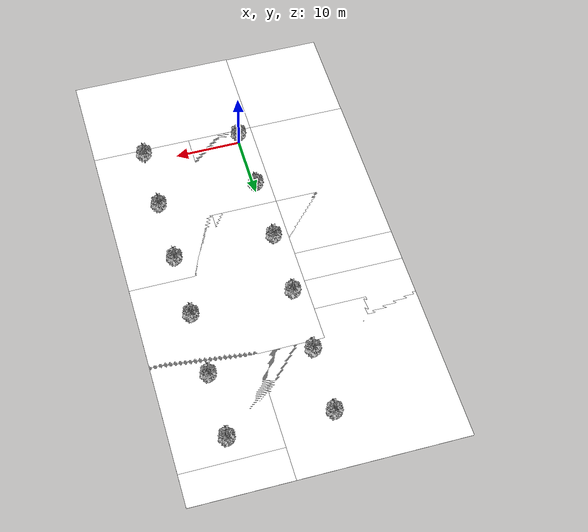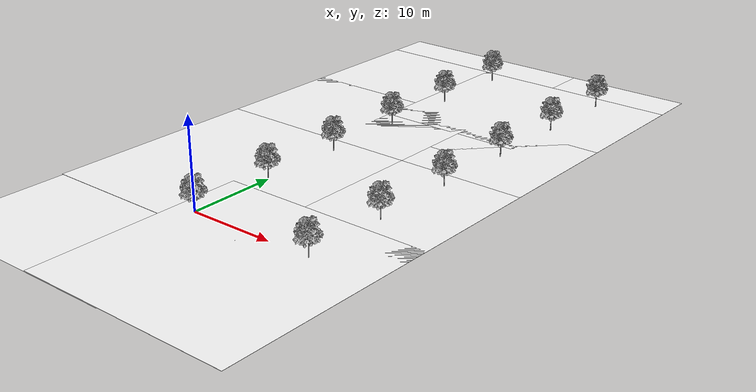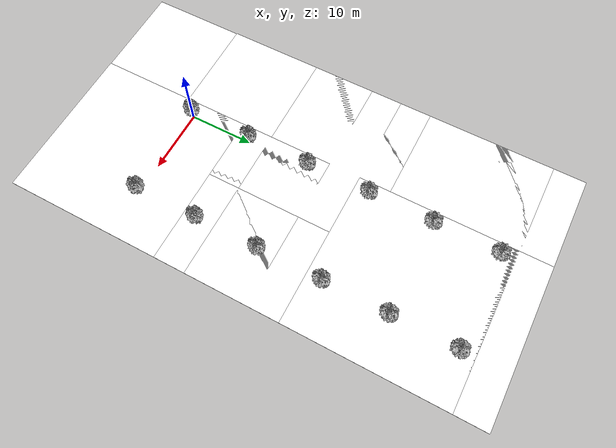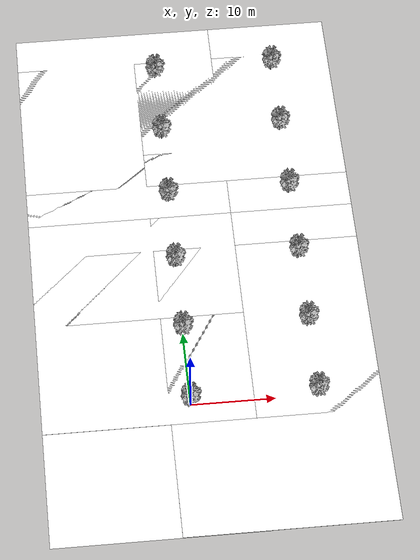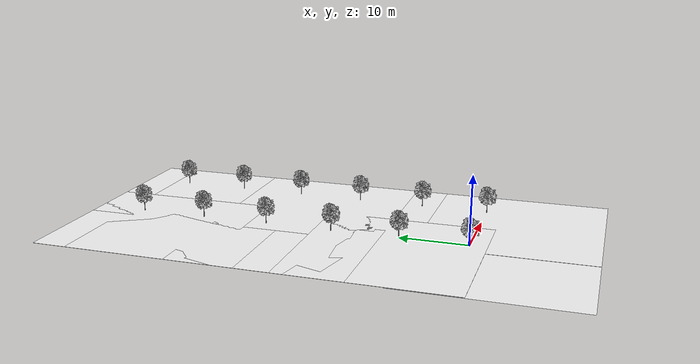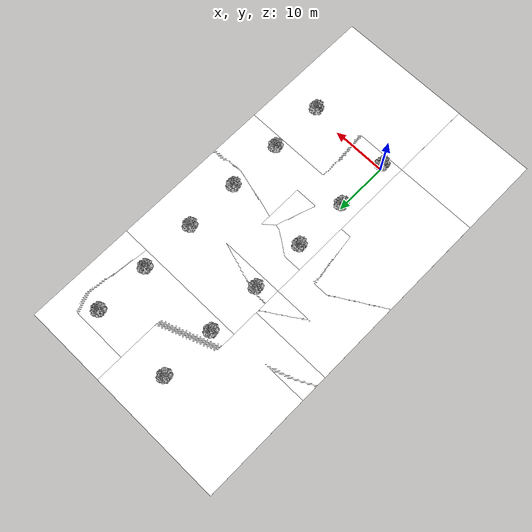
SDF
<?xml version="1.0" encoding="UTF-8"?>
<sdf version="1.9">
  <world name="apple_orchard_20x50_offline_grasspatch_no_collision">
    <physics type="ode">
      <max_step_size>0.004</max_step_size>
      <real_time_factor>1.0</real_time_factor>
      <real_time_update_rate>250</real_time_update_rate>
    </physics>
    <gravity>0 0 -9.8</gravity>
    <magnetic_field>6e-06 2.3e-05 -4.2e-05</magnetic_field>
    <atmosphere type="adiabatic"/>
    <scene>
      <grid>false</grid>
      <ambient>0.4 0.4 0.4 1</ambient>
      <background>0.7 0.7 0.7 1</background>
      <shadows>true</shadows>
    </scene>

    <include>
       <uri>model://grasspatch_no_collision</uri>
      <name>grasspatch_0</name>
      <pose>-5 -5 0 0 0 0</pose>
    </include>
    <include>
       <uri>model://grasspatch_no_collision</uri>
      <name>grasspatch_1</name>
      <pose>-5 10 0 0 0 0</pose>
    </include>
    <include>
       <uri>model://grasspatch_no_collision</uri>
      <name>grasspatch_2</name>
      <pose>-5 25 0 0 0 0</pose>
    </include>
    <include>
       <uri>model://grasspatch_no_collision</uri>
      <name>grasspatch_3</name>
      <pose>-5 40 0 0 0 0</pose>
    </include>
    <include>
       <uri>model://grasspatch_no_collision</uri>
      <name>grasspatch_3_a</name>
      <pose>-5 45 0 0 0 0</pose>
    </include>
    <include>
       <uri>model://grasspatch_no_collision</uri>
      <name>grasspatch_4</name>
      <pose>10 -5 0 0 0 0</pose>
    </include>
    <include>
       <uri>model://grasspatch_no_collision</uri>
      <name>grasspatch_5</name>
      <pose>10 10 0 0 0 0</pose>
    </include>
    <include>
       <uri>model://grasspatch_no_collision</uri>
      <name>grasspatch_6</name>
      <pose>10 25 0 0 0 0</pose>
    </include>
    <include>
       <uri>model://grasspatch_no_collision</uri>
      <name>grasspatch_7</name>
      <pose>10 40 0 0 0 0</pose>
    </include>
    <include>
       <uri>model://grasspatch_no_collision</uri>
      <name>grasspatch_7_a</name>
      <pose>10 45 0 0 0 0</pose>
    </include>
    <include>
      <uri>model://appletree</uri>
      <name>AppleTree_0</name>
      <pose>0 0 0 0 0 0</pose>
    </include>
    <include>
      <uri>model://appletree</uri>
      <name>AppleTree_1</name>
      <pose>0 10 0 0 0 0</pose>
    </include>
    <include>
      <uri>model://appletree</uri>
      <name>AppleTree_2</name>
      <pose>0 20 0 0 0 0</pose>
    </include>
    <include>
      <uri>model://appletree</uri>
      <name>AppleTree_3</name>
      <pose>0 30 0 0 0 0</pose>
    </include>
    <include>
      <uri>model://appletree</uri>
      <name>AppleTree_4</name>
      <pose>0 40 0 0 0 0</pose>
    </include>
    <include>
      <uri>model://appletree</uri>
      <name>AppleTree_5</name>
      <pose>0 50 0 0 0 0</pose>
    </include>
    <include>
      <uri>model://appletree</uri>
      <name>AppleTree_6</name>
      <pose>15 0 0 0 0 0</pose>
    </include>
    <include>
      <uri>model://appletree</uri>
      <name>AppleTree_7</name>
      <pose>15 10 0 0 0 0</pose>
    </include>
    <include>
      <uri>model://appletree</uri>
      <name>AppleTree_8</name>
      <pose>15 20 0 0 0 0</pose>
    </include>
    <include>
      <uri>model://appletree</uri>
      <name>AppleTree_9</name>
      <pose>15 30 0 0 0 0</pose>
    </include>
    <include>
      <uri>model://appletree</uri>
      <name>AppleTree_10</name>
      <pose>15 40 0 0 0 0</pose>
    </include>
    <include>
      <uri>model://appletree</uri>
      <name>AppleTree_11</name>
      <pose>15 50 0 0 0 0</pose>
    </include>

    <light name="sunUTC" type="directional">
      <pose>0 0 500 0 -0 0</pose>
      <cast_shadows>true</cast_shadows>
      <intensity>1</intensity>
      <direction>0.001 0.625 -0.78</direction>
      <diffuse>0.904 0.904 0.904 1</diffuse>
      <specular>0.271 0.271 0.271 1</specular>
      <attenuation>
        <range>2000</range>
        <linear>0</linear>
        <constant>1</constant>
        <quadratic>0</quadratic>
      </attenuation>
      <spot>
        <inner_angle>0</inner_angle>
        <outer_angle>0</outer_angle>
        <falloff>0</falloff>
      </spot>
    </light>
    <spherical_coordinates>
      <surface_model>EARTH_WGS84</surface_model>
      <world_frame_orientation>ENU</world_frame_orientation>
      <latitude_deg>59.36818431847906</latitude_deg>
      <longitude_deg>10.444830999411774</longitude_deg>
      <elevation>0</elevation>
    </spherical_coordinates>
  </world>
</sdf>

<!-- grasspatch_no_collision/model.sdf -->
<sdf version="1.4">
    <model name="grasspatch_no_collision">
        <static>true</static>
        <link name="link">

        <collision name="ground_collision">
            <pose>0 0 0 0 0 0</pose>
            <geometry>
            <plane>
                <normal>0 0 1</normal>
                <size>25 25</size>
            </plane>
            </geometry>
            <surface>
            <contact>
                <collide_bitmask>0xFFFF</collide_bitmask>
            </contact>
            <friction>
                <ode>
                <mu>1.0</mu>
                <mu2>1.0</mu2>
                </ode>
            </friction>
            </surface>
        </collision>

            <visual name="visual_s10">
                <pose>0 0 0 0 0 0</pose>
                <cast_shadows>false</cast_shadows>
                <geometry>
                    <plane>
                        <normal>0 0 1</normal>
                        <size>25 25</size>
                    </plane>
                </geometry>
                <material>
                    <diffuse>1.0 1.0 1.0</diffuse>
                    <specular>1.0 1.0 1.0</specular>
                    <pbr>
                        <metal>
                            <albedo_map>materials/textures/grass_dry.png</albedo_map>
                            <normal_map>materials/textures/grass_dry.png</normal_map>
                        </metal>
                    </pbr>
                </material>
            </visual>
        </link>
    </model>
</sdf>

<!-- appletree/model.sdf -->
<sdf version="1.9">
  <model name="appletree">
    <static>true</static>
    <link name="link">

      <!-- Use the exact same mesh for collisions! -->
      <collision name="collision">
        <!-- Exact same pose as the visual -->
        <pose>0 0 0 0 0 0</pose>
        <geometry>
          <mesh>
            <uri>model://appletree/meshes/appletree.obj</uri>
            <scale>8 8 8</scale>
          </mesh>
        </geometry>
      </collision>

      <!-- The visual mesh -->
      <visual name="visual">
        <pose>0 0 0 0 0 0</pose>
        <geometry>
          <mesh>
            <uri>model://appletree/meshes/appletree.obj</uri>
            <scale>8 8 8</scale>
          </mesh>
        </geometry>
      </visual>

    </link>
  </model>
</sdf>
